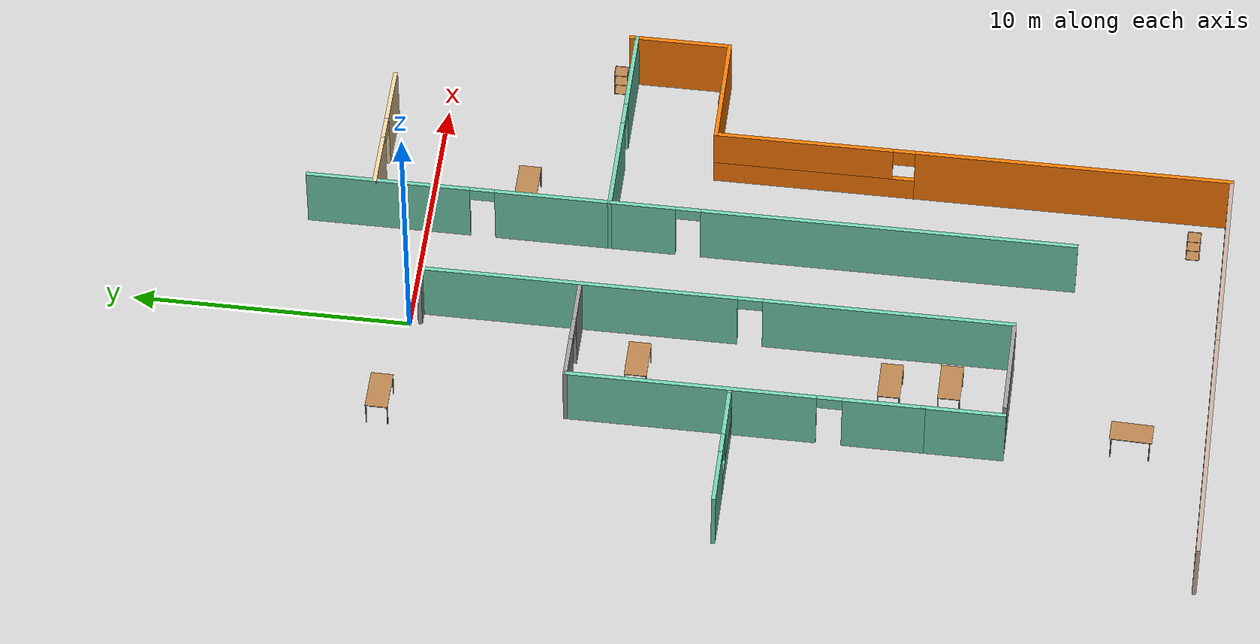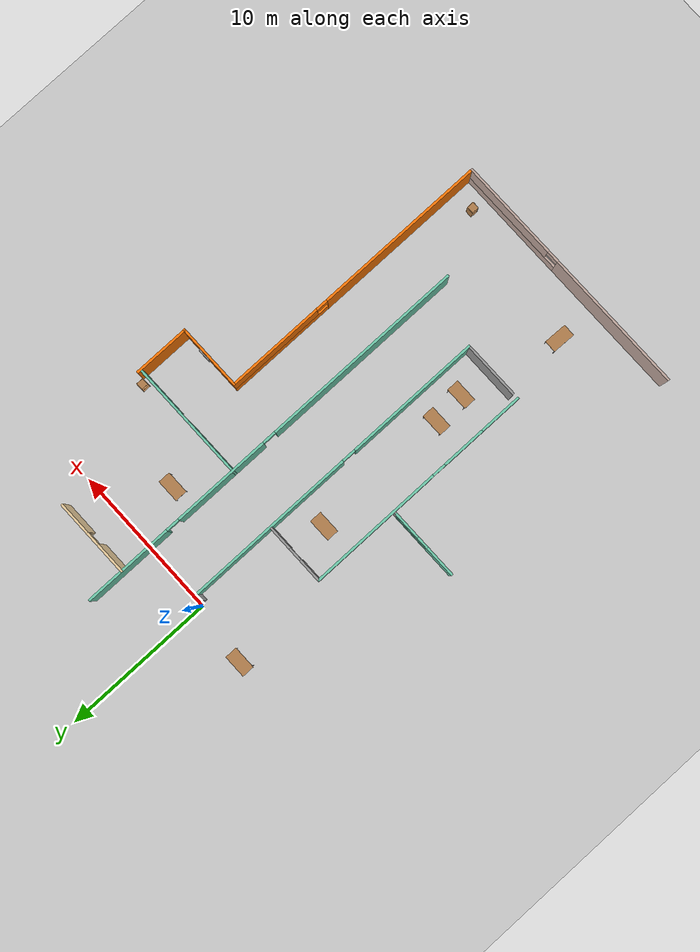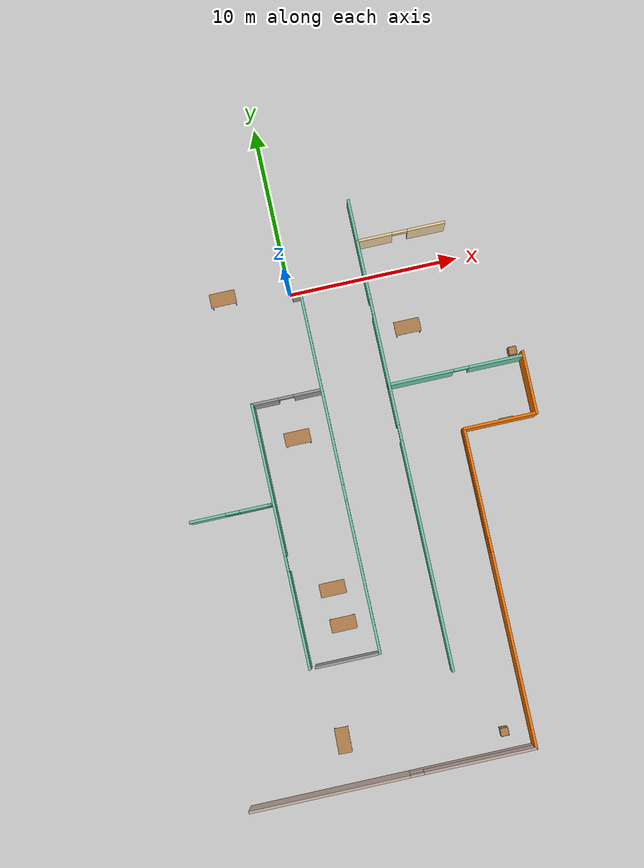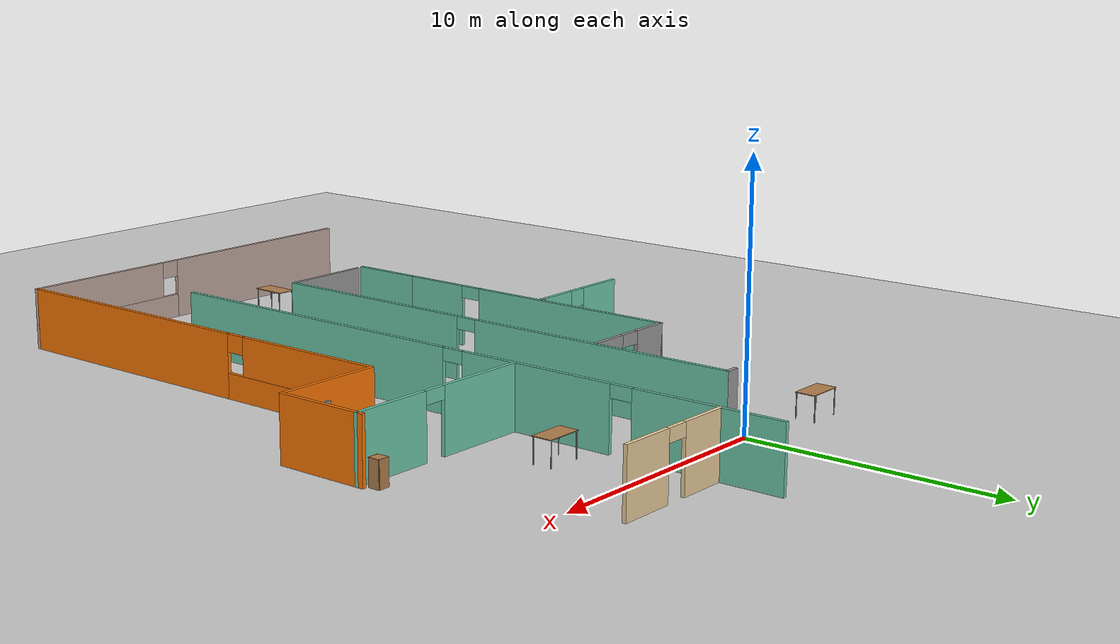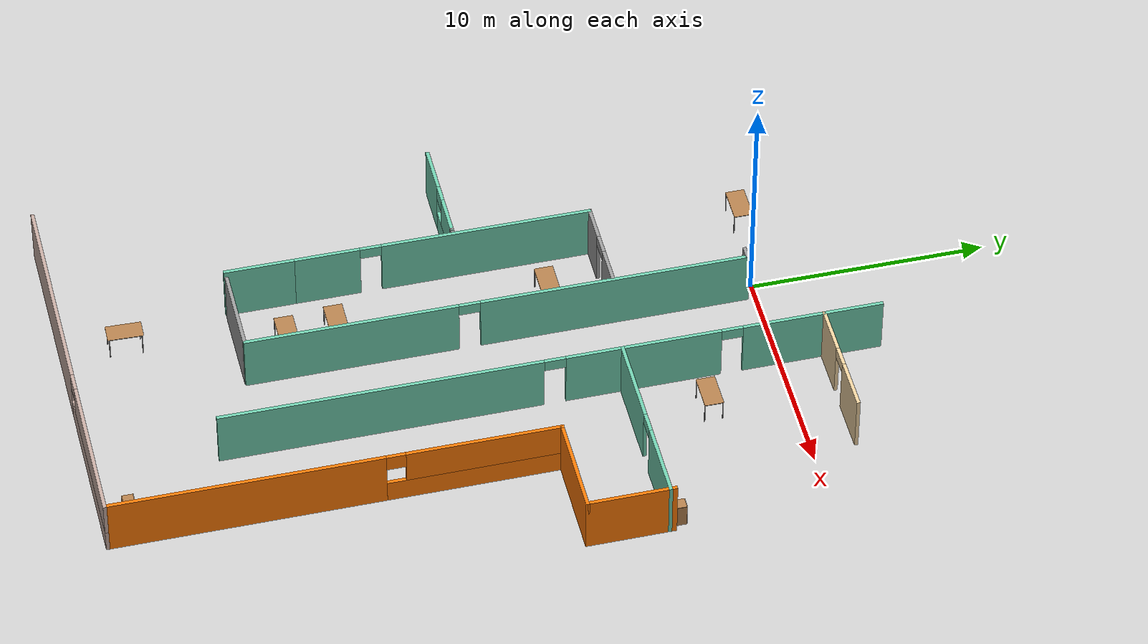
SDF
<sdf version="1.6">
 <world name="default">
  <model name="ground_plane">
   <static>1</static>
   <link name="link">
    <collision name="collision">
     <geometry><plane><normal>0 0 1</normal><size>100 100</size></plane></geometry>
     <surface>
      <contact><collide_bitmask>65535</collide_bitmask></contact>
      <friction><ode><mu>100</mu><mu2>50</mu2></ode></friction>
     </surface>
    </collision>
    <visual name="visual">
     <cast_shadows>0</cast_shadows>
     <geometry><plane><normal>0 0 1</normal><size>100 100</size></plane></geometry>
     <material>
      <script><uri>file://media/materials/scripts/gazebo.material</uri><name>Gazebo/Grey</name></script>
     </material>
    </visual>
   </link>
  </model>
  <model name="table">
   <static>1</static>
   <link name="link">
    <collision name="surface">
     <pose>0 0 1 0 -0 0</pose>
     <geometry><box><size>1.5 0.8 0.03</size></box></geometry>
     <surface><friction><ode><mu>0.6</mu><mu2>0.6</mu2></ode></friction></surface>
    </collision>
    <visual name="visual1">
     <pose>0 0 1 0 -0 0</pose>
     <geometry><box><size>1.5 0.8 0.03</size></box></geometry>
     <material>
      <script><uri>file://media/materials/scripts/gazebo.material</uri><name>Gazebo/Wood</name></script>
     </material>
    </visual>
    <collision name="front_left_leg">
     <pose>0.68 0.38 0.5 0 -0 0</pose>
     <geometry><cylinder><radius>0.02</radius><length>1</length></cylinder></geometry>
    </collision>
    <visual name="front_left_leg">
     <pose>0.68 0.38 0.5 0 -0 0</pose>
     <geometry><cylinder><radius>0.02</radius><length>1</length></cylinder></geometry>
     <material>
      <script><uri>file://media/materials/scripts/gazebo.material</uri><name>Gazebo/Grey</name></script>
     </material>
    </visual>
    <collision name="front_right_leg">
     <pose>0.68 -0.38 0.5 0 -0 0</pose>
     <geometry><cylinder><radius>0.02</radius><length>1</length></cylinder></geometry>
    </collision>
    <visual name="front_right_leg">
     <pose>0.68 -0.38 0.5 0 -0 0</pose>
     <geometry><cylinder><radius>0.02</radius><length>1</length></cylinder></geometry>
     <material>
      <script><uri>file://media/materials/scripts/gazebo.material</uri><name>Gazebo/Grey</name></script>
     </material>
    </visual>
    <collision name="back_right_leg">
     <pose>-0.68 -0.38 0.5 0 -0 0</pose>
     <geometry><cylinder><radius>0.02</radius><length>1</length></cylinder></geometry>
    </collision>
    <visual name="back_right_leg">
     <pose>-0.68 -0.38 0.5 0 -0 0</pose>
     <geometry><cylinder><radius>0.02</radius><length>1</length></cylinder></geometry>
     <material>
      <script><uri>file://media/materials/scripts/gazebo.material</uri><name>Gazebo/Grey</name></script>
     </material>
    </visual>
    <collision name="back_left_leg">
     <pose>-0.68 0.38 0.5 0 -0 0</pose>
     <geometry><cylinder><radius>0.02</radius><length>1</length></cylinder></geometry>
    </collision>
    <visual name="back_left_leg">
     <pose>-0.68 0.38 0.5 0 -0 0</pose>
     <geometry><cylinder><radius>0.02</radius><length>1</length></cylinder></geometry>
     <material>
      <script><uri>file://media/materials/scripts/gazebo.material</uri><name>Gazebo/Grey</name></script>
     </material>
    </visual>
   </link>
   <pose>-3.88536 0.490535 0 0 -0 0</pose>
  </model>
  <model name="table_0">
   <static>1</static>
   <link name="link">
    <collision name="surface">
     <pose>0 0 1 0 -0 0</pose>
     <geometry><box><size>1.5 0.8 0.03</size></box></geometry>
     <surface><friction><ode><mu>0.6</mu><mu2>0.6</mu2></ode></friction></surface>
    </collision>
    <visual name="visual1">
     <pose>0 0 1 0 -0 0</pose>
     <geometry><box><size>1.5 0.8 0.03</size></box></geometry>
     <material>
      <script><uri>file://media/materials/scripts/gazebo.material</uri><name>Gazebo/Wood</name></script>
     </material>
    </visual>
    <collision name="front_left_leg">
     <pose>0.68 0.38 0.5 0 -0 0</pose>
     <geometry><cylinder><radius>0.02</radius><length>1</length></cylinder></geometry>
    </collision>
    <visual name="front_left_leg">
     <pose>0.68 0.38 0.5 0 -0 0</pose>
     <geometry><cylinder><radius>0.02</radius><length>1</length></cylinder></geometry>
     <material>
      <script><uri>file://media/materials/scripts/gazebo.material</uri><name>Gazebo/Grey</name></script>
     </material>
    </visual>
    <collision name="front_right_leg">
     <pose>0.68 -0.38 0.5 0 -0 0</pose>
     <geometry><cylinder><radius>0.02</radius><length>1</length></cylinder></geometry>
    </collision>
    <visual name="front_right_leg">
     <pose>0.68 -0.38 0.5 0 -0 0</pose>
     <geometry><cylinder><radius>0.02</radius><length>1</length></cylinder></geometry>
     <material>
      <script><uri>file://media/materials/scripts/gazebo.material</uri><name>Gazebo/Grey</name></script>
     </material>
    </visual>
    <collision name="back_right_leg">
     <pose>-0.68 -0.38 0.5 0 -0 0</pose>
     <geometry><cylinder><radius>0.02</radius><length>1</length></cylinder></geometry>
    </collision>
    <visual name="back_right_leg">
     <pose>-0.68 -0.38 0.5 0 -0 0</pose>
     <geometry><cylinder><radius>0.02</radius><length>1</length></cylinder></geometry>
     <material>
      <script><uri>file://media/materials/scripts/gazebo.material</uri><name>Gazebo/Grey</name></script>
     </material>
    </visual>
    <collision name="back_left_leg">
     <pose>-0.68 0.38 0.5 0 -0 0</pose>
     <geometry><cylinder><radius>0.02</radius><length>1</length></cylinder></geometry>
    </collision>
    <visual name="back_left_leg">
     <pose>-0.68 0.38 0.5 0 -0 0</pose>
     <geometry><cylinder><radius>0.02</radius><length>1</length></cylinder></geometry>
     <material>
      <script><uri>file://media/materials/scripts/gazebo.material</uri><name>Gazebo/Grey</name></script>
     </material>
    </visual>
   </link>
   <pose>6.25449 -3.41825 0 0 -0 0</pose>
  </model>
  <model name="cabinet">
   <static>1</static>
   <link name="cabinet_bottom_plate">
    <inertial>
     <pose>0 0 -1 0 -0 0</pose>
     <inertia><ixx>2.05</ixx><ixy>0</ixy><ixz>0</ixz><iyy>2.05</iyy><iyz>0</iyz><izz>2.05</izz></inertia>
     <mass>25</mass>
    </inertial>
    <collision name="cabinet_bottom_plate_geom">
     <pose>0 0 0.01 0 -0 0</pose>
     <geometry><box><size>0.45 0.45 0.02</size></box></geometry>
    </collision>
    <visual name="cabinet_bottom_plate_geom_visual">
     <pose>0 0 0.01 0 -0 0</pose>
     <geometry><box><size>0.45 0.45 0.02</size></box></geometry>
     <material>
      <script><uri>file://media/materials/scripts/gazebo.material</uri><name>Gazebo/Wood</name></script>
     </material>
    </visual>
    <collision name="cabinet_bottom_plate_geom_cabinet_back_plate">
     <pose>0.235 0 0.51 0 -0 0</pose>
     <geometry><box><size>0.02 0.45 1.02</size></box></geometry>
    </collision>
    <visual name="cabinet_bottom_plate_geom_cabinet_back_plate_visual">
     <pose>0.235 0 0.51 0 -0 0</pose>
     <geometry><box><size>0.02 0.45 1.02</size></box></geometry>
     <material>
      <script><uri>file://media/materials/scripts/gazebo.material</uri><name>Gazebo/Wood</name></script>
     </material>
    </visual>
    <collision name="cabinet_bottom_plate_geom_cabinet_left_plate">
     <pose>0 0.235 0.51 0 -0 0</pose>
     <geometry><box><size>0.45 0.02 1.02</size></box></geometry>
    </collision>
    <visual name="cabinet_bottom_plate_geom_cabinet_left_plate_visual">
     <pose>0 0.235 0.51 0 -0 0</pose>
     <geometry><box><size>0.45 0.02 1.02</size></box></geometry>
     <material>
      <script><uri>file://media/materials/scripts/gazebo.material</uri><name>Gazebo/Wood</name></script>
     </material>
    </visual>
    <collision name="cabinet_bottom_plate_geom_cabinet_middle_plate">
     <pose>0 0 0.51 0 -0 0</pose>
     <geometry><box><size>0.45 0.45 0.02</size></box></geometry>
    </collision>
    <visual name="cabinet_bottom_plate_geom_cabinet_middle_plate_visual">
     <pose>0 0 0.51 0 -0 0</pose>
     <geometry><box><size>0.45 0.45 0.02</size></box></geometry>
     <material>
      <script><uri>file://media/materials/scripts/gazebo.material</uri><name>Gazebo/Wood</name></script>
     </material>
    </visual>
    <collision name="cabinet_bottom_plate_geom_cabinet_right_plate">
     <pose>0 -0.235 0.51 0 -0 0</pose>
     <geometry><box><size>0.45 0.02 1.02</size></box></geometry>
    </collision>
    <visual name="cabinet_bottom_plate_geom_cabinet_right_plate_visual">
     <pose>0 -0.235 0.51 0 -0 0</pose>
     <geometry><box><size>0.45 0.02 1.02</size></box></geometry>
     <material>
      <script><uri>file://media/materials/scripts/gazebo.material</uri><name>Gazebo/Wood</name></script>
     </material>
    </visual>
    <collision name="cabinet_bottom_plate_geom_cabinet_top_plate">
     <pose>0 0 1.01 0 -0 0</pose>
     <geometry><box><size>0.45 0.45 0.02</size></box></geometry>
    </collision>
    <visual name="cabinet_bottom_plate_geom_cabinet_top_plate_visual">
     <pose>0 0 1.01 0 -0 0</pose>
     <geometry><box><size>0.45 0.45 0.02</size></box></geometry>
     <material>
      <script><uri>file://media/materials/scripts/gazebo.material</uri><name>Gazebo/Wood</name></script>
     </material>
    </visual>
   </link>
   <pose>11.9206 -6.11327 0 0 -0 0</pose>
  </model>
  <model name="office">
   <pose>-7.49516 -7.8361 0 0 -0 0</pose>
   <link name="Wall_112">
    <pose>11.9382 -1.70464 0 0 0 -1.5708</pose>
    <visual name="Wall_112_Visual_0">
     <pose>-10.9153 0 1.25 0 -0 0</pose>
     <geometry><box><size>5.91935 0.15 2.5</size></box></geometry>
     <material>
      <script><uri>file://media/materials/scripts/gazebo.material</uri><name>Gazebo/Grey</name></script>
      <ambient>0.435294 0.796078 0.67451 1</ambient>
     </material>
     <meta><layer>0</layer></meta>
    </visual>
    <collision name="Wall_112_Collision_0">
     <geometry><box><size>5.91935 0.15 2.5</size></box></geometry>
     <pose>-10.9153 0 1.25 0 -0 0</pose>
    </collision>
    <visual name="Wall_112_Visual_1">
     <pose>-3.79167 0 1.25 0 -0 0</pose>
     <geometry><box><size>6.52794 0.15 2.5</size></box></geometry>
     <material>
      <script><uri>file://media/materials/scripts/gazebo.material</uri><name>Gazebo/Grey</name></script>
      <ambient>0.435294 0.796078 0.67451 1</ambient>
     </material>
     <meta><layer>0</layer></meta>
    </visual>
    <collision name="Wall_112_Collision_1">
     <geometry><box><size>6.52794 0.15 2.5</size></box></geometry>
     <pose>-3.79167 0 1.25 0 -0 0</pose>
    </collision>
    <visual name="Wall_112_Visual_2">
     <pose>7.12365 0 1.25 0 -0 0</pose>
     <geometry><box><size>13.5027 0.15 2.5</size></box></geometry>
     <material>
      <script><uri>file://media/materials/scripts/gazebo.material</uri><name>Gazebo/Grey</name></script>
      <ambient>0.435294 0.796078 0.67451 1</ambient>
     </material>
     <meta><layer>0</layer></meta>
    </visual>
    <collision name="Wall_112_Collision_2">
     <geometry><box><size>13.5027 0.15 2.5</size></box></geometry>
     <pose>7.12365 0 1.25 0 -0 0</pose>
    </collision>
    <visual name="Wall_112_Visual_3">
     <pose>-7.50565 0 2.25 0 -0 0</pose>
     <geometry><box><size>0.9 0.15 0.5</size></box></geometry>
     <material>
      <script><uri>file://media/materials/scripts/gazebo.material</uri><name>Gazebo/Grey</name></script>
      <ambient>0.435294 0.796078 0.67451 1</ambient>
     </material>
     <meta><layer>0</layer></meta>
    </visual>
    <collision name="Wall_112_Collision_3">
     <geometry><box><size>0.9 0.15 0.5</size></box></geometry>
     <pose>-7.50565 0 2.25 0 -0 0</pose>
    </collision>
    <visual name="Wall_112_Visual_4">
     <pose>-0.077701 0 2.25 0 -0 0</pose>
     <geometry><box><size>0.9 0.15 0.5</size></box></geometry>
     <material>
      <script><uri>file://media/materials/scripts/gazebo.material</uri><name>Gazebo/Grey</name></script>
      <ambient>0.435294 0.796078 0.67451 1</ambient>
     </material>
     <meta><layer>0</layer></meta>
    </visual>
    <collision name="Wall_112_Collision_4">
     <geometry><box><size>0.9 0.15 0.5</size></box></geometry>
     <pose>-0.077701 0 2.25 0 -0 0</pose>
    </collision>
   </link>
   <link name="Wall_127">
    <pose>15.8817 1.19913 0 0 -0 3.14159</pose>
    <visual name="Wall_127_Visual_0">
     <pose>-2.37244 0 1.25 0 -0 0</pose>
     <geometry><box><size>3.29212 0.15 2.5</size></box></geometry>
     <material>
      <script><uri>file://media/materials/scripts/gazebo.material</uri><name>Gazebo/Grey</name></script>
      <ambient>0.435294 0.796078 0.67451 1</ambient>
     </material>
     <meta><layer>0</layer></meta>
    </visual>
    <collision name="Wall_127_Collision_0">
     <geometry><box><size>3.29212 0.15 2.5</size></box></geometry>
     <pose>-2.37244 0 1.25 0 -0 0</pose>
    </collision>
    <visual name="Wall_127_Visual_1">
     <pose>2.09606 0 1.25 0 -0 0</pose>
     <geometry><box><size>3.84488 0.15 2.5</size></box></geometry>
     <material>
      <script><uri>file://media/materials/scripts/gazebo.material</uri><name>Gazebo/Grey</name></script>
      <ambient>0.435294 0.796078 0.67451 1</ambient>
     </material>
     <meta><layer>0</layer></meta>
    </visual>
    <collision name="Wall_127_Collision_1">
     <geometry><box><size>3.84488 0.15 2.5</size></box></geometry>
     <pose>2.09606 0 1.25 0 -0 0</pose>
    </collision>
    <visual name="Wall_127_Visual_2">
     <pose>-0.276377 0 2.25 0 -0 0</pose>
     <geometry><box><size>0.9 0.15 0.5</size></box></geometry>
     <material>
      <script><uri>file://media/materials/scripts/gazebo.material</uri><name>Gazebo/Grey</name></script>
      <ambient>0.435294 0.796078 0.67451 1</ambient>
     </material>
     <meta><layer>0</layer></meta>
    </visual>
    <collision name="Wall_127_Collision_2">
     <geometry><box><size>0.9 0.15 0.5</size></box></geometry>
     <pose>-0.276377 0 2.25 0 -0 0</pose>
    </collision>
   </link>
   <link name="Wall_136">
    <pose>14.4787 9.69013 0 0 -0 0</pose>
    <visual name="Wall_136_Visual_0">
     <pose>-1.55879 0 1.25 0 -0 0</pose>
     <geometry><box><size>2.11332 0.15 2.5</size></box></geometry>
     <material>
      <script><uri>file://media/materials/scripts/gazebo.material</uri><name>Gazebo/Grey</name></script>
      <ambient>0.921569 0.807843 0.615686 1</ambient>
     </material>
     <meta><layer>0</layer></meta>
    </visual>
    <collision name="Wall_136_Collision_0">
     <geometry><box><size>2.11332 0.15 2.5</size></box></geometry>
     <pose>-1.55879 0 1.25 0 -0 0</pose>
    </collision>
    <visual name="Wall_136_Visual_1">
     <pose>1.50666 0 1.25 0 -0 0</pose>
     <geometry><box><size>2.21758 0.15 2.5</size></box></geometry>
     <material>
      <script><uri>file://media/materials/scripts/gazebo.material</uri><name>Gazebo/Grey</name></script>
      <ambient>0.921569 0.807843 0.615686 1</ambient>
     </material>
     <meta><layer>0</layer></meta>
    </visual>
    <collision name="Wall_136_Collision_1">
     <geometry><box><size>2.21758 0.15 2.5</size></box></geometry>
     <pose>1.50666 0 1.25 0 -0 0</pose>
    </collision>
    <visual name="Wall_136_Visual_2">
     <pose>-0.05213 0 2.25 0 -0 0</pose>
     <geometry><box><size>0.9 0.15 0.5</size></box></geometry>
     <material>
      <script><uri>file://media/materials/scripts/gazebo.material</uri><name>Gazebo/Grey</name></script>
      <ambient>0.921569 0.807843 0.615686 1</ambient>
     </material>
     <meta><layer>0</layer></meta>
    </visual>
    <collision name="Wall_136_Collision_2">
     <geometry><box><size>0.9 0.15 0.5</size></box></geometry>
     <pose>-0.05213 0 2.25 0 -0 0</pose>
    </collision>
   </link>
   <link name="Wall_140">
    <pose>7.28409 -20.799 0 0 0 -1.6e-05</pose>
    <visual name="Wall_140_Visual_0">
     <pose>-3.69631 0 1.25 0 -0 0</pose>
     <geometry><box><size>9.35738 0.15 2.5</size></box></geometry>
     <material>
      <script><uri>file://media/materials/scripts/gazebo.material</uri><name>Gazebo/Grey</name></script>
      <ambient>0.760784 0.662745 0.627451 1</ambient>
     </material>
     <meta><layer>0</layer></meta>
    </visual>
    <collision name="Wall_140_Collision_0">
     <geometry><box><size>9.35738 0.15 2.5</size></box></geometry>
     <pose>-3.69631 0 1.25 0 -0 0</pose>
    </collision>
    <visual name="Wall_140_Visual_1">
     <pose>4.67869 0 0.5 0 -0 0</pose>
     <geometry><box><size>7.39262 0.15 1</size></box></geometry>
     <material>
      <script><uri>file://media/materials/scripts/gazebo.material</uri><name>Gazebo/Grey</name></script>
      <ambient>0.760784 0.662745 0.627451 1</ambient>
     </material>
     <meta><layer>0</layer></meta>
    </visual>
    <collision name="Wall_140_Collision_1">
     <geometry><box><size>7.39262 0.15 1</size></box></geometry>
     <pose>4.67869 0 0.5 0 -0 0</pose>
    </collision>
    <visual name="Wall_140_Visual_2">
     <pose>5.07869 0 1.75 0 -0 0</pose>
     <geometry><box><size>6.59262 0.15 1.5</size></box></geometry>
     <material>
      <script><uri>file://media/materials/scripts/gazebo.material</uri><name>Gazebo/Grey</name></script>
      <ambient>0.760784 0.662745 0.627451 1</ambient>
     </material>
     <meta><layer>0</layer></meta>
    </visual>
    <collision name="Wall_140_Collision_2">
     <geometry><box><size>6.59262 0.15 1.5</size></box></geometry>
     <pose>5.07869 0 1.75 0 -0 0</pose>
    </collision>
    <visual name="Wall_140_Visual_3">
     <pose>1.38238 0 2.15 0 -0 0</pose>
     <geometry><box><size>0.8 0.15 0.7</size></box></geometry>
     <material>
      <script><uri>file://media/materials/scripts/gazebo.material</uri><name>Gazebo/Grey</name></script>
      <ambient>0.760784 0.662745 0.627451 1</ambient>
     </material>
     <meta><layer>0</layer></meta>
    </visual>
    <collision name="Wall_140_Collision_3">
     <geometry><box><size>0.8 0.15 0.7</size></box></geometry>
     <pose>1.38238 0 2.15 0 -0 0</pose>
    </collision>
   </link>
   <link name="Wall_141">
    <pose>15.5841 -11.499 0 0 -0 1.57079</pose>
    <visual name="Wall_141_Visual_0">
     <pose>-3.64528 0 1.25 0 -0 0</pose>
     <geometry><box><size>11.4594 0.15 2.5</size></box></geometry>
     <material>
      <script><uri>file://media/materials/scripts/gazebo.material</uri><name>Gazebo/Grey</name></script>
      <ambient>0.996078 0.47451 0.0196078 1</ambient>
     </material>
     <meta><layer>0</layer></meta>
    </visual>
    <collision name="Wall_141_Collision_0">
     <geometry><box><size>11.4594 0.15 2.5</size></box></geometry>
     <pose>-3.64528 0 1.25 0 -0 0</pose>
    </collision>
    <visual name="Wall_141_Visual_1">
     <pose>5.72971 0 0.5 0 -0 0</pose>
     <geometry><box><size>7.29057 0.15 1</size></box></geometry>
     <material>
      <script><uri>file://media/materials/scripts/gazebo.material</uri><name>Gazebo/Grey</name></script>
      <ambient>0.996078 0.47451 0.0196078 1</ambient>
     </material>
     <meta><layer>0</layer></meta>
    </visual>
    <collision name="Wall_141_Collision_1">
     <geometry><box><size>7.29057 0.15 1</size></box></geometry>
     <pose>5.72971 0 0.5 0 -0 0</pose>
    </collision>
    <visual name="Wall_141_Visual_2">
     <pose>6.12972 0 1.75 0 -0 0</pose>
     <geometry><box><size>6.49057 0.15 1.5</size></box></geometry>
     <material>
      <script><uri>file://media/materials/scripts/gazebo.material</uri><name>Gazebo/Grey</name></script>
      <ambient>0.996078 0.47451 0.0196078 1</ambient>
     </material>
     <meta><layer>0</layer></meta>
    </visual>
    <collision name="Wall_141_Collision_2">
     <geometry><box><size>6.49057 0.15 1.5</size></box></geometry>
     <pose>6.12972 0 1.75 0 -0 0</pose>
    </collision>
    <visual name="Wall_141_Visual_3">
     <pose>2.48443 0 2.15 0 -0 0</pose>
     <geometry><box><size>0.8 0.15 0.7</size></box></geometry>
     <material>
      <script><uri>file://media/materials/scripts/gazebo.material</uri><name>Gazebo/Grey</name></script>
      <ambient>0.996078 0.47451 0.0196078 1</ambient>
     </material>
     <meta><layer>0</layer></meta>
    </visual>
    <collision name="Wall_141_Collision_3">
     <geometry><box><size>0.8 0.15 0.7</size></box></geometry>
     <pose>2.48443 0 2.15 0 -0 0</pose>
    </collision>
   </link>
   <link name="Wall_142">
    <collision name="Wall_142_Collision">
     <geometry><box><size>4.391 0.15 2.5</size></box></geometry>
     <pose>0 0 1.25 0 -0 0</pose>
    </collision>
    <visual name="Wall_142_Visual">
     <pose>0 0 1.25 0 -0 0</pose>
     <geometry><box><size>4.391 0.15 2.5</size></box></geometry>
     <material>
      <script><uri>file://media/materials/scripts/gazebo.material</uri><name>Gazebo/Grey</name></script>
      <ambient>0.996078 0.47451 0.0196078 1</ambient>
     </material>
     <meta><layer>0</layer></meta>
    </visual>
    <pose>17.7047 -2.19887 0 0 -0 0</pose>
   </link>
   <link name="Wall_143">
    <collision name="Wall_143_Collision">
     <geometry><box><size>3.75 0.15 2.5</size></box></geometry>
     <pose>0 0 1.25 0 -0 0</pose>
    </collision>
    <visual name="Wall_143_Visual">
     <pose>0 0 1.25 0 -0 0</pose>
     <geometry><box><size>3.75 0.15 2.5</size></box></geometry>
     <material>
      <script><uri>file://media/materials/scripts/gazebo.material</uri><name>Gazebo/Grey</name></script>
      <ambient>0.996078 0.47451 0.0196078 1</ambient>
     </material>
     <meta><layer>0</layer></meta>
    </visual>
    <pose>19.8252 -0.398866 0 0 -0 1.5708</pose>
   </link>
   <link name="Wall_214">
    <pose>4.00216 -4.53687 0 0 0 -1.5708</pose>
    <visual name="Wall_214_Visual_0">
     <pose>-1.90601 0 1.25 0 -0 0</pose>
     <geometry><box><size>8.93797 0.15 2.5</size></box></geometry>
     <material>
      <script><uri>file://media/materials/scripts/gazebo.material</uri><name>Gazebo/Grey</name></script>
      <ambient>0.435294 0.796078 0.67451 1</ambient>
     </material>
     <meta><layer>0</layer></meta>
    </visual>
    <collision name="Wall_214_Collision_0">
     <geometry><box><size>8.93797 0.15 2.5</size></box></geometry>
     <pose>-1.90601 0 1.25 0 -0 0</pose>
    </collision>
    <visual name="Wall_214_Visual_1">
     <pose>4.91899 0 1.25 0 -0 0</pose>
     <geometry><box><size>2.91203 0.15 2.5</size></box></geometry>
     <material>
      <script><uri>file://media/materials/scripts/gazebo.material</uri><name>Gazebo/Grey</name></script>
      <ambient>0.435294 0.796078 0.67451 1</ambient>
     </material>
     <meta><layer>0</layer></meta>
    </visual>
    <collision name="Wall_214_Collision_1">
     <geometry><box><size>2.91203 0.15 2.5</size></box></geometry>
     <pose>4.91899 0 1.25 0 -0 0</pose>
    </collision>
    <visual name="Wall_214_Visual_2">
     <pose>3.01297 0 2.25 0 -0 0</pose>
     <geometry><box><size>0.9 0.15 0.5</size></box></geometry>
     <material>
      <script><uri>file://media/materials/scripts/gazebo.material</uri><name>Gazebo/Grey</name></script>
      <ambient>0.435294 0.796078 0.67451 1</ambient>
     </material>
     <meta><layer>0</layer></meta>
    </visual>
    <collision name="Wall_214_Collision_2">
     <geometry><box><size>0.9 0.15 0.5</size></box></geometry>
     <pose>3.01297 0 2.25 0 -0 0</pose>
    </collision>
   </link>
   <link name="Wall_215">
    <collision name="Wall_215_Collision">
     <geometry><box><size>2.974 0.15 2.5</size></box></geometry>
     <pose>0 0 1.25 0 -0 0</pose>
    </collision>
    <visual name="Wall_215_Visual">
     <pose>0 0 1.25 0 -0 0</pose>
     <geometry><box><size>2.974 0.15 2.5</size></box></geometry>
     <material>
      <script><uri>file://media/materials/scripts/gazebo.material</uri><name>Gazebo/Grey</name></script>
      <ambient>0.435294 0.796078 0.67451 1</ambient>
     </material>
     <meta><layer>0</layer></meta>
    </visual>
    <pose>4.00216 -12.2489 0 0 0 -1.5708</pose>
   </link>
   <link name="Wall_224">
    <collision name="Wall_224_Collision">
     <geometry><box><size>0.606 0.15 2.5</size></box></geometry>
     <pose>0 0 1.25 0 -0 0</pose>
    </collision>
    <visual name="Wall_224_Visual">
     <pose>0 0 1.25 0 -0 0</pose>
     <geometry><box><size>0.606 0.15 2.5</size></box></geometry>
     <material>
      <script><uri>file://media/materials/scripts/gazebo.material</uri><name>Gazebo/Grey</name></script>
      <ambient>1 1 1 1</ambient>
     </material>
     <meta><layer>0</layer></meta>
    </visual>
    <pose>7.86716 7.46213 0 0 -0 0</pose>
   </link>
   <link name="Wall_225">
    <pose>8.09516 -3.08787 0 0 0 -1.5708</pose>
    <visual name="Wall_225_Visual_0">
     <pose>-4.93319 0 1.25 0 -0 0</pose>
     <geometry><box><size>11.3836 0.15 2.5</size></box></geometry>
     <material>
      <script><uri>file://media/materials/scripts/gazebo.material</uri><name>Gazebo/Grey</name></script>
      <ambient>0.435294 0.796078 0.67451 1</ambient>
     </material>
     <meta><layer>0</layer></meta>
    </visual>
    <collision name="Wall_225_Collision_0">
     <geometry><box><size>11.3836 0.15 2.5</size></box></geometry>
     <pose>-4.93319 0 1.25 0 -0 0</pose>
    </collision>
    <visual name="Wall_225_Visual_1">
     <pose>6.14181 0 1.25 0 -0 0</pose>
     <geometry><box><size>8.96638 0.15 2.5</size></box></geometry>
     <material>
      <script><uri>file://media/materials/scripts/gazebo.material</uri><name>Gazebo/Grey</name></script>
      <ambient>0.435294 0.796078 0.67451 1</ambient>
     </material>
     <meta><layer>0</layer></meta>
    </visual>
    <collision name="Wall_225_Collision_1">
     <geometry><box><size>8.96638 0.15 2.5</size></box></geometry>
     <pose>6.14181 0 1.25 0 -0 0</pose>
    </collision>
    <visual name="Wall_225_Visual_2">
     <pose>1.20862 0 2.25 0 -0 0</pose>
     <geometry><box><size>0.9 0.15 0.5</size></box></geometry>
     <material>
      <script><uri>file://media/materials/scripts/gazebo.material</uri><name>Gazebo/Grey</name></script>
      <ambient>0.435294 0.796078 0.67451 1</ambient>
     </material>
     <meta><layer>0</layer></meta>
    </visual>
    <collision name="Wall_225_Collision_2">
     <geometry><box><size>0.9 0.15 0.5</size></box></geometry>
     <pose>1.20862 0 2.25 0 -0 0</pose>
    </collision>
   </link>
   <link name="Wall_76">
    <collision name="Wall_76_Collision">
     <geometry><box><size>3.72253 0.15 2.5</size></box></geometry>
     <pose>0 0 1.25 0 -0 0</pose>
    </collision>
    <visual name="Wall_76_Visual">
     <pose>0 0 1.25 0 -0 0</pose>
     <geometry><box><size>3.72253 0.15 2.5</size></box></geometry>
     <material>
      <script><uri>file://media/materials/scripts/gazebo.material</uri><name>Gazebo/Grey</name></script>
      <ambient>1 1 1 1</ambient>
     </material>
     <meta><layer>0</layer></meta>
    </visual>
    <pose>6.18266 -13.6609 0 0 -0 3.14159</pose>
   </link>
   <link name="Wall_79">
    <collision name="Wall_79_Collision">
     <geometry><box><size>0.15 0.15 2.5</size></box></geometry>
     <pose>0 0 1.25 0 -0 0</pose>
    </collision>
    <visual name="Wall_79_Visual">
     <pose>0 0 1.25 0 -0 0</pose>
     <geometry><box><size>0.15 0.15 2.5</size></box></geometry>
     <material>
      <script><uri>file://media/materials/scripts/gazebo.material</uri><name>Gazebo/Grey</name></script>
      <ambient>1 1 1 1</ambient>
     </material>
     <meta><layer>0</layer></meta>
    </visual>
    <pose>4.00216 1.76313 0 0 -0 0</pose>
   </link>
   <link name="Wall_80">
    <collision name="Wall_80_Collision">
     <geometry><box><size>0.15 0.15 2.5</size></box></geometry>
     <pose>0 0 1.25 0 -0 0</pose>
    </collision>
    <visual name="Wall_80_Visual">
     <pose>0 0 1.25 0 -0 0</pose>
     <geometry><box><size>0.15 0.15 2.5</size></box></geometry>
     <material>
      <script><uri>file://media/materials/scripts/gazebo.material</uri><name>Gazebo/Grey</name></script>
      <ambient>1 1 1 1</ambient>
     </material>
     <meta><layer>0</layer></meta>
    </visual>
    <pose>4.00216 1.76313 0 0 -0 0</pose>
   </link>
   <link name="Wall_81">
    <collision name="Wall_81_Collision">
     <geometry><box><size>0.15 0.15 2.5</size></box></geometry>
     <pose>0 0 1.25 0 -0 0</pose>
    </collision>
    <visual name="Wall_81_Visual">
     <pose>0 0 1.25 0 -0 0</pose>
     <geometry><box><size>0.15 0.15 2.5</size></box></geometry>
     <material>
      <script><uri>file://media/materials/scripts/gazebo.material</uri><name>Gazebo/Grey</name></script>
      <ambient>1 1 1 1</ambient>
     </material>
     <meta><layer>0</layer></meta>
    </visual>
    <pose>4.00216 1.76313 0 0 -0 0</pose>
   </link>
   <link name="Wall_83">
    <pose>5.98566 1.76313 0 0 -0 0</pose>
    <visual name="Wall_83_Visual_0">
     <pose>-1.24977 0 1.25 0 -0 0</pose>
     <geometry><box><size>1.61746 0.15 2.5</size></box></geometry>
     <material>
      <script><uri>file://media/materials/scripts/gazebo.material</uri><name>Gazebo/Grey</name></script>
      <ambient>1 1 1 1</ambient>
     </material>
     <meta><layer>0</layer></meta>
    </visual>
    <collision name="Wall_83_Collision_0">
     <geometry><box><size>1.61746 0.15 2.5</size></box></geometry>
     <pose>-1.24977 0 1.25 0 -0 0</pose>
    </collision>
    <visual name="Wall_83_Visual_1">
     <pose>1.25873 0 1.25 0 -0 0</pose>
     <geometry><box><size>1.59954 0.15 2.5</size></box></geometry>
     <material>
      <script><uri>file://media/materials/scripts/gazebo.material</uri><name>Gazebo/Grey</name></script>
      <ambient>1 1 1 1</ambient>
     </material>
     <meta><layer>0</layer></meta>
    </visual>
    <collision name="Wall_83_Collision_1">
     <geometry><box><size>1.59954 0.15 2.5</size></box></geometry>
     <pose>1.25873 0 1.25 0 -0 0</pose>
    </collision>
    <visual name="Wall_83_Visual_2">
     <pose>0.008963 0 2.25 0 -0 0</pose>
     <geometry><box><size>0.9 0.15 0.5</size></box></geometry>
     <material>
      <script><uri>file://media/materials/scripts/gazebo.material</uri><name>Gazebo/Grey</name></script>
      <ambient>1 1 1 1</ambient>
     </material>
     <meta><layer>0</layer></meta>
    </visual>
    <collision name="Wall_83_Collision_2">
     <geometry><box><size>0.9 0.15 0.5</size></box></geometry>
     <pose>0.008963 0 2.25 0 -0 0</pose>
    </collision>
   </link>
   <link name="Wall_86">
    <pose>1.45826 -4.04707 0 0 0 -8.9e-05</pose>
    <visual name="Wall_86_Visual_0">
     <pose>-1.32043 0 1.25 0 -0 0</pose>
     <geometry><box><size>2.10913 0.15 2.5</size></box></geometry>
     <material>
      <script><uri>file://media/materials/scripts/gazebo.material</uri><name>Gazebo/Grey</name></script>
      <ambient>0.435294 0.796078 0.67451 1</ambient>
     </material>
     <meta><layer>0</layer></meta>
    </visual>
    <collision name="Wall_86_Collision_0">
     <geometry><box><size>2.10913 0.15 2.5</size></box></geometry>
     <pose>-1.32043 0 1.25 0 -0 0</pose>
    </collision>
    <visual name="Wall_86_Visual_1">
     <pose>1.05457 0 0.5 0 -0 0</pose>
     <geometry><box><size>2.64087 0.15 1</size></box></geometry>
     <material>
      <script><uri>file://media/materials/scripts/gazebo.material</uri><name>Gazebo/Grey</name></script>
      <ambient>0.435294 0.796078 0.67451 1</ambient>
     </material>
     <meta><layer>0</layer></meta>
    </visual>
    <collision name="Wall_86_Collision_1">
     <geometry><box><size>2.64087 0.15 1</size></box></geometry>
     <pose>1.05457 0 0.5 0 -0 0</pose>
    </collision>
    <visual name="Wall_86_Visual_2">
     <pose>1.45457 0 1.75 0 -0 0</pose>
     <geometry><box><size>1.84087 0.15 1.5</size></box></geometry>
     <material>
      <script><uri>file://media/materials/scripts/gazebo.material</uri><name>Gazebo/Grey</name></script>
      <ambient>0.435294 0.796078 0.67451 1</ambient>
     </material>
     <meta><layer>0</layer></meta>
    </visual>
    <collision name="Wall_86_Collision_2">
     <geometry><box><size>1.84087 0.15 1.5</size></box></geometry>
     <pose>1.45457 0 1.75 0 -0 0</pose>
    </collision>
    <visual name="Wall_86_Visual_3">
     <pose>0.134134 0 2.15 0 -0 0</pose>
     <geometry><box><size>0.8 0.15 0.7</size></box></geometry>
     <material>
      <script><uri>file://media/materials/scripts/gazebo.material</uri><name>Gazebo/Grey</name></script>
      <ambient>0.435294 0.796078 0.67451 1</ambient>
     </material>
     <meta><layer>0</layer></meta>
    </visual>
    <collision name="Wall_86_Collision_3">
     <geometry><box><size>0.8 0.15 0.7</size></box></geometry>
     <pose>0.134134 0 2.15 0 -0 0</pose>
    </collision>
   </link>
   <link name="Wall_88">
    <collision name="Wall_88_Collision">
     <geometry><box><size>0.25 0.15 2.5</size></box></geometry>
     <pose>0 0 1.25 0 -0 0</pose>
    </collision>
    <visual name="Wall_88_Visual">
     <pose>0 0 1.25 0 -0 0</pose>
     <geometry><box><size>0.25 0.15 2.5</size></box></geometry>
     <material>
      <script><uri>file://media/materials/scripts/gazebo.material</uri><name>Gazebo/Grey</name></script>
      <ambient>1 1 1 1</ambient>
     </material>
     <meta><layer>0</layer></meta>
    </visual>
    <pose>3.80837 -4.04727 0 0 -0 0</pose>
   </link>
   <link name="Wall_97">
    <collision name="Wall_97_Collision">
     <geometry><box><size>0.15 0.15 2.5</size></box></geometry>
     <pose>0 0 1.25 0 -0 0</pose>
    </collision>
    <visual name="Wall_97_Visual">
     <pose>0 0 1.25 0 -0 0</pose>
     <geometry><box><size>0.15 0.15 2.5</size></box></geometry>
     <material>
      <script><uri>file://media/materials/scripts/gazebo.material</uri><name>Gazebo/Grey</name></script>
      <ambient>1 1 1 1</ambient>
     </material>
     <meta><layer>0</layer></meta>
    </visual>
    <pose>8.09516 7.46213 0 0 -0 0</pose>
   </link>
   <link name="Wall_98">
    <collision name="Wall_98_Collision">
     <geometry><box><size>0.15 0.15 2.5</size></box></geometry>
     <pose>0 0 1.25 0 -0 0</pose>
    </collision>
    <visual name="Wall_98_Visual">
     <pose>0 0 1.25 0 -0 0</pose>
     <geometry><box><size>0.15 0.15 2.5</size></box></geometry>
     <material>
      <script><uri>file://media/materials/scripts/gazebo.material</uri><name>Gazebo/Grey</name></script>
      <ambient>1 1 1 1</ambient>
     </material>
     <meta><layer>0</layer></meta>
    </visual>
    <pose>8.09516 7.46213 0 0 -0 0</pose>
   </link>
   <link name="Wall_99">
    <collision name="Wall_99_Collision">
     <geometry><box><size>0.15 0.15 2.5</size></box></geometry>
     <pose>0 0 1.25 0 -0 0</pose>
    </collision>
    <visual name="Wall_99_Visual">
     <pose>0 0 1.25 0 -0 0</pose>
     <geometry><box><size>0.15 0.15 2.5</size></box></geometry>
     <material>
      <script><uri>file://media/materials/scripts/gazebo.material</uri><name>Gazebo/Grey</name></script>
      <ambient>1 1 1 1</ambient>
     </material>
     <meta><layer>0</layer></meta>
    </visual>
    <pose>8.09516 7.46213 0 0 -0 0</pose>
   </link>
   <link name="Window_18">
    <collision name="Window_18_Collision">
     <geometry><box><size>0.8 0.17 0.8</size></box></geometry>
     <pose>0 0 0.4 0 -0 0</pose>
    </collision>
    <visual name="Window_18_Visual">
     <pose>0 0 0.4 0 -0 0</pose>
     <geometry><box><size>0.8 0.17 0.8</size></box></geometry>
     <material>
      <script><uri>file://media/materials/scripts/gazebo.material</uri><name>Gazebo/Grey</name></script>
     </material>
    </visual>
    <pose>18.1342 -2.11848 1 0 -0 0</pose>
   </link>
   <static>1</static>
  </model>
  <model name="table_2">
   <static>1</static>
   <link name="link">
    <collision name="surface">
     <pose>0 0 1 0 -0 0</pose>
     <geometry><box><size>1.5 0.8 0.03</size></box></geometry>
     <surface><friction><ode><mu>0.6</mu><mu2>0.6</mu2></ode></friction></surface>
    </collision>
    <visual name="visual1">
     <pose>0 0 1 0 -0 0</pose>
     <geometry><box><size>1.5 0.8 0.03</size></box></geometry>
     <material>
      <script><uri>file://media/materials/scripts/gazebo.material</uri><name>Gazebo/Wood</name></script>
     </material>
    </visual>
    <collision name="front_left_leg">
     <pose>0.68 0.38 0.5 0 -0 0</pose>
     <geometry><cylinder><radius>0.02</radius><length>1</length></cylinder></geometry>
    </collision>
    <visual name="front_left_leg">
     <pose>0.68 0.38 0.5 0 -0 0</pose>
     <geometry><cylinder><radius>0.02</radius><length>1</length></cylinder></geometry>
     <material>
      <script><uri>file://media/materials/scripts/gazebo.material</uri><name>Gazebo/Grey</name></script>
     </material>
    </visual>
    <collision name="front_right_leg">
     <pose>0.68 -0.38 0.5 0 -0 0</pose>
     <geometry><cylinder><radius>0.02</radius><length>1</length></cylinder></geometry>
    </collision>
    <visual name="front_right_leg">
     <pose>0.68 -0.38 0.5 0 -0 0</pose>
     <geometry><cylinder><radius>0.02</radius><length>1</length></cylinder></geometry>
     <material>
      <script><uri>file://media/materials/scripts/gazebo.material</uri><name>Gazebo/Grey</name></script>
     </material>
    </visual>
    <collision name="back_right_leg">
     <pose>-0.68 -0.38 0.5 0 -0 0</pose>
     <geometry><cylinder><radius>0.02</radius><length>1</length></cylinder></geometry>
    </collision>
    <visual name="back_right_leg">
     <pose>-0.68 -0.38 0.5 0 -0 0</pose>
     <geometry><cylinder><radius>0.02</radius><length>1</length></cylinder></geometry>
     <material>
      <script><uri>file://media/materials/scripts/gazebo.material</uri><name>Gazebo/Grey</name></script>
     </material>
    </visual>
    <collision name="back_left_leg">
     <pose>-0.68 0.38 0.5 0 -0 0</pose>
     <geometry><cylinder><radius>0.02</radius><length>1</length></cylinder></geometry>
    </collision>
    <visual name="back_left_leg">
     <pose>-0.68 0.38 0.5 0 -0 0</pose>
     <geometry><cylinder><radius>0.02</radius><length>1</length></cylinder></geometry>
     <material>
      <script><uri>file://media/materials/scripts/gazebo.material</uri><name>Gazebo/Grey</name></script>
     </material>
    </visual>
   </link>
   <pose>-1.09421 -19.4496 0 0 -0 0</pose>
  </model>
  <model name="table_3">
   <static>1</static>
   <link name="link">
    <collision name="surface">
     <pose>0 0 1 0 -0 0</pose>
     <geometry><box><size>1.5 0.8 0.03</size></box></geometry>
     <surface><friction><ode><mu>0.6</mu><mu2>0.6</mu2></ode></friction></surface>
    </collision>
    <visual name="visual1">
     <pose>0 0 1 0 -0 0</pose>
     <geometry><box><size>1.5 0.8 0.03</size></box></geometry>
     <material>
      <script><uri>file://media/materials/scripts/gazebo.material</uri><name>Gazebo/Wood</name></script>
     </material>
    </visual>
    <collision name="front_left_leg">
     <pose>0.68 0.38 0.5 0 -0 0</pose>
     <geometry><cylinder><radius>0.02</radius><length>1</length></cylinder></geometry>
    </collision>
    <visual name="front_left_leg">
     <pose>0.68 0.38 0.5 0 -0 0</pose>
     <geometry><cylinder><radius>0.02</radius><length>1</length></cylinder></geometry>
     <material>
      <script><uri>file://media/materials/scripts/gazebo.material</uri><name>Gazebo/Grey</name></script>
     </material>
    </visual>
    <collision name="front_right_leg">
     <pose>0.68 -0.38 0.5 0 -0 0</pose>
     <geometry><cylinder><radius>0.02</radius><length>1</length></cylinder></geometry>
    </collision>
    <visual name="front_right_leg">
     <pose>0.68 -0.38 0.5 0 -0 0</pose>
     <geometry><cylinder><radius>0.02</radius><length>1</length></cylinder></geometry>
     <material>
      <script><uri>file://media/materials/scripts/gazebo.material</uri><name>Gazebo/Grey</name></script>
     </material>
    </visual>
    <collision name="back_right_leg">
     <pose>-0.68 -0.38 0.5 0 -0 0</pose>
     <geometry><cylinder><radius>0.02</radius><length>1</length></cylinder></geometry>
    </collision>
    <visual name="back_right_leg">
     <pose>-0.68 -0.38 0.5 0 -0 0</pose>
     <geometry><cylinder><radius>0.02</radius><length>1</length></cylinder></geometry>
     <material>
      <script><uri>file://media/materials/scripts/gazebo.material</uri><name>Gazebo/Grey</name></script>
     </material>
    </visual>
    <collision name="back_left_leg">
     <pose>-0.68 0.38 0.5 0 -0 0</pose>
     <geometry><cylinder><radius>0.02</radius><length>1</length></cylinder></geometry>
    </collision>
    <visual name="back_left_leg">
     <pose>-0.68 0.38 0.5 0 -0 0</pose>
     <geometry><cylinder><radius>0.02</radius><length>1</length></cylinder></geometry>
     <material>
      <script><uri>file://media/materials/scripts/gazebo.material</uri><name>Gazebo/Grey</name></script>
     </material>
    </visual>
   </link>
   <pose>-1.26523 -17.3376 0 0 -0 0</pose>
  </model>
  <model name="table_12">
   <static>1</static>
   <link name="link">
    <collision name="surface">
     <pose>0 0 1 0 -0 0</pose>
     <geometry><box><size>1.5 0.8 0.03</size></box></geometry>
     <surface><friction><ode><mu>0.6</mu><mu2>0.6</mu2></ode></friction></surface>
    </collision>
    <visual name="visual1">
     <pose>0 0 1 0 -0 0</pose>
     <geometry><box><size>1.5 0.8 0.03</size></box></geometry>
     <material>
      <script><uri>file://media/materials/scripts/gazebo.material</uri><name>Gazebo/Wood</name></script>
     </material>
    </visual>
    <collision name="front_left_leg">
     <pose>0.68 0.38 0.5 0 -0 0</pose>
     <geometry><cylinder><radius>0.02</radius><length>1</length></cylinder></geometry>
    </collision>
    <visual name="front_left_leg">
     <pose>0.68 0.38 0.5 0 -0 0</pose>
     <geometry><cylinder><radius>0.02</radius><length>1</length></cylinder></geometry>
     <material>
      <script><uri>file://media/materials/scripts/gazebo.material</uri><name>Gazebo/Grey</name></script>
     </material>
    </visual>
    <collision name="front_right_leg">
     <pose>0.68 -0.38 0.5 0 -0 0</pose>
     <geometry><cylinder><radius>0.02</radius><length>1</length></cylinder></geometry>
    </collision>
    <visual name="front_right_leg">
     <pose>0.68 -0.38 0.5 0 -0 0</pose>
     <geometry><cylinder><radius>0.02</radius><length>1</length></cylinder></geometry>
     <material>
      <script><uri>file://media/materials/scripts/gazebo.material</uri><name>Gazebo/Grey</name></script>
     </material>
    </visual>
    <collision name="back_right_leg">
     <pose>-0.68 -0.38 0.5 0 -0 0</pose>
     <geometry><cylinder><radius>0.02</radius><length>1</length></cylinder></geometry>
    </collision>
    <visual name="back_right_leg">
     <pose>-0.68 -0.38 0.5 0 -0 0</pose>
     <geometry><cylinder><radius>0.02</radius><length>1</length></cylinder></geometry>
     <material>
      <script><uri>file://media/materials/scripts/gazebo.material</uri><name>Gazebo/Grey</name></script>
     </material>
    </visual>
    <collision name="back_left_leg">
     <pose>-0.68 0.38 0.5 0 -0 0</pose>
     <geometry><cylinder><radius>0.02</radius><length>1</length></cylinder></geometry>
    </collision>
    <visual name="back_left_leg">
     <pose>-0.68 0.38 0.5 0 -0 0</pose>
     <geometry><cylinder><radius>0.02</radius><length>1</length></cylinder></geometry>
     <material>
      <script><uri>file://media/materials/scripts/gazebo.material</uri><name>Gazebo/Grey</name></script>
     </material>
    </visual>
   </link>
   <pose>-2.54149 -25.9553 0 0 0 -1.60107</pose>
  </model>
  <model name="cabinet_5">
   <static>1</static>
   <link name="cabinet_bottom_plate">
    <inertial>
     <pose>0 0 -1 0 -0 0</pose>
     <inertia><ixx>2.05</ixx><ixy>0</ixy><ixz>0</ixz><iyy>2.05</iyy><iyz>0</iyz><izz>2.05</izz></inertia>
     <mass>25</mass>
    </inertial>
    <collision name="cabinet_bottom_plate_geom">
     <pose>0 0 0.01 0 -0 0</pose>
     <geometry><box><size>0.45 0.45 0.02</size></box></geometry>
    </collision>
    <visual name="cabinet_bottom_plate_geom_visual">
     <pose>0 0 0.01 0 -0 0</pose>
     <geometry><box><size>0.45 0.45 0.02</size></box></geometry>
     <material>
      <script><uri>file://media/materials/scripts/gazebo.material</uri><name>Gazebo/Wood</name></script>
     </material>
    </visual>
    <collision name="cabinet_bottom_plate_geom_cabinet_back_plate">
     <pose>0.235 0 0.51 0 -0 0</pose>
     <geometry><box><size>0.02 0.45 1.02</size></box></geometry>
    </collision>
    <visual name="cabinet_bottom_plate_geom_cabinet_back_plate_visual">
     <pose>0.235 0 0.51 0 -0 0</pose>
     <geometry><box><size>0.02 0.45 1.02</size></box></geometry>
     <material>
      <script><uri>file://media/materials/scripts/gazebo.material</uri><name>Gazebo/Wood</name></script>
     </material>
    </visual>
    <collision name="cabinet_bottom_plate_geom_cabinet_left_plate">
     <pose>0 0.235 0.51 0 -0 0</pose>
     <geometry><box><size>0.45 0.02 1.02</size></box></geometry>
    </collision>
    <visual name="cabinet_bottom_plate_geom_cabinet_left_plate_visual">
     <pose>0 0.235 0.51 0 -0 0</pose>
     <geometry><box><size>0.45 0.02 1.02</size></box></geometry>
     <material>
      <script><uri>file://media/materials/scripts/gazebo.material</uri><name>Gazebo/Wood</name></script>
     </material>
    </visual>
    <collision name="cabinet_bottom_plate_geom_cabinet_middle_plate">
     <pose>0 0 0.51 0 -0 0</pose>
     <geometry><box><size>0.45 0.45 0.02</size></box></geometry>
    </collision>
    <visual name="cabinet_bottom_plate_geom_cabinet_middle_plate_visual">
     <pose>0 0 0.51 0 -0 0</pose>
     <geometry><box><size>0.45 0.45 0.02</size></box></geometry>
     <material>
      <script><uri>file://media/materials/scripts/gazebo.material</uri><name>Gazebo/Wood</name></script>
     </material>
    </visual>
    <collision name="cabinet_bottom_plate_geom_cabinet_right_plate">
     <pose>0 -0.235 0.51 0 -0 0</pose>
     <geometry><box><size>0.45 0.02 1.02</size></box></geometry>
    </collision>
    <visual name="cabinet_bottom_plate_geom_cabinet_right_plate_visual">
     <pose>0 -0.235 0.51 0 -0 0</pose>
     <geometry><box><size>0.45 0.02 1.02</size></box></geometry>
     <material>
      <script><uri>file://media/materials/scripts/gazebo.material</uri><name>Gazebo/Wood</name></script>
     </material>
    </visual>
    <collision name="cabinet_bottom_plate_geom_cabinet_top_plate">
     <pose>0 0 1.01 0 -0 0</pose>
     <geometry><box><size>0.45 0.45 0.02</size></box></geometry>
    </collision>
    <visual name="cabinet_bottom_plate_geom_cabinet_top_plate_visual">
     <pose>0 0 1.01 0 -0 0</pose>
     <geometry><box><size>0.45 0.45 0.02</size></box></geometry>
     <material>
      <script><uri>file://media/materials/scripts/gazebo.material</uri><name>Gazebo/Wood</name></script>
     </material>
    </visual>
   </link>
   <pose>6.59642 -27.4863 0 0 -0 0</pose>
  </model>
  <model name="table_14">
   <static>1</static>
   <link name="link">
    <collision name="surface">
     <pose>0 0 1 0 -0 0</pose>
     <geometry><box><size>1.5 0.8 0.03</size></box></geometry>
     <surface><friction><ode><mu>0.6</mu><mu2>0.6</mu2></ode></friction></surface>
    </collision>
    <visual name="visual1">
     <pose>0 0 1 0 -0 0</pose>
     <geometry><box><size>1.5 0.8 0.03</size></box></geometry>
     <material>
      <script><uri>file://media/materials/scripts/gazebo.material</uri><name>Gazebo/Wood</name></script>
     </material>
    </visual>
    <collision name="front_left_leg">
     <pose>0.68 0.38 0.5 0 -0 0</pose>
     <geometry><cylinder><radius>0.02</radius><length>1</length></cylinder></geometry>
    </collision>
    <visual name="front_left_leg">
     <pose>0.68 0.38 0.5 0 -0 0</pose>
     <geometry><cylinder><radius>0.02</radius><length>1</length></cylinder></geometry>
     <material>
      <script><uri>file://media/materials/scripts/gazebo.material</uri><name>Gazebo/Grey</name></script>
     </material>
    </visual>
    <collision name="front_right_leg">
     <pose>0.68 -0.38 0.5 0 -0 0</pose>
     <geometry><cylinder><radius>0.02</radius><length>1</length></cylinder></geometry>
    </collision>
    <visual name="front_right_leg">
     <pose>0.68 -0.38 0.5 0 -0 0</pose>
     <geometry><cylinder><radius>0.02</radius><length>1</length></cylinder></geometry>
     <material>
      <script><uri>file://media/materials/scripts/gazebo.material</uri><name>Gazebo/Grey</name></script>
     </material>
    </visual>
    <collision name="back_right_leg">
     <pose>-0.68 -0.38 0.5 0 -0 0</pose>
     <geometry><cylinder><radius>0.02</radius><length>1</length></cylinder></geometry>
    </collision>
    <visual name="back_right_leg">
     <pose>-0.68 -0.38 0.5 0 -0 0</pose>
     <geometry><cylinder><radius>0.02</radius><length>1</length></cylinder></geometry>
     <material>
      <script><uri>file://media/materials/scripts/gazebo.material</uri><name>Gazebo/Grey</name></script>
     </material>
    </visual>
    <collision name="back_left_leg">
     <pose>-0.68 0.38 0.5 0 -0 0</pose>
     <geometry><cylinder><radius>0.02</radius><length>1</length></cylinder></geometry>
    </collision>
    <visual name="back_left_leg">
     <pose>-0.68 0.38 0.5 0 -0 0</pose>
     <geometry><cylinder><radius>0.02</radius><length>1</length></cylinder></geometry>
     <material>
      <script><uri>file://media/materials/scripts/gazebo.material</uri><name>Gazebo/Grey</name></script>
     </material>
    </visual>
   </link>
   <pose>-1.37797 -8.37319 0 0 -0 0</pose>
  </model>
 </world>
</sdf>
